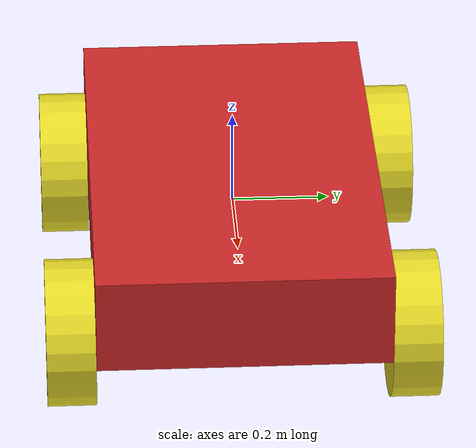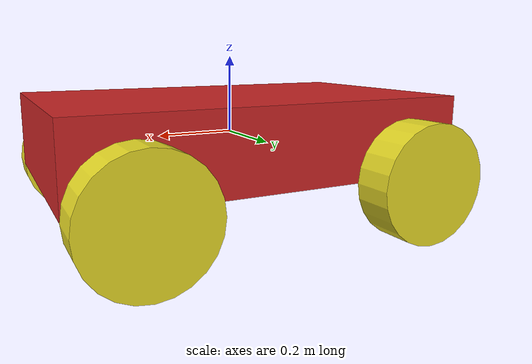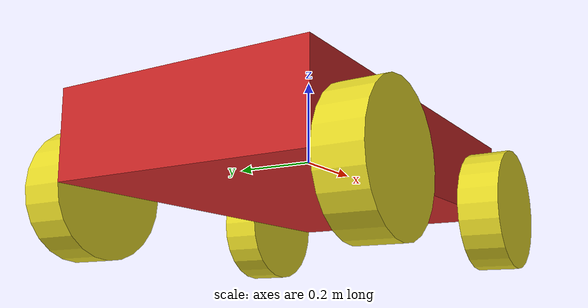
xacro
<?xml version="1.0"?>

<robot name="differential_drive_robot"
       xmlns:xacro="http://www.ros.org/wiki/xacro">

    <!-- PARAMETERS -->

    <xacro:property name="body_link_x_dim" value="1.0"/>
    <xacro:property name="body_link_y_dim" value="0.6"/>
    <xacro:property name="body_link_z_dim" value="0.2"/>

    <xacro:property name="wheel_link_radius" value="0.15"/>
    <xacro:property name="wheel_link_length" value="0.1"/>
    <xacro:property name="wheel_link_z_location" value="-0.1"/>

    <xacro:property name="body_density" value="2710.0"/>
    <xacro:property name="wheel_density" value="2710.0"/>

    <xacro:property name="pi_const" value="3.14159265"/>

    <!-- MASS -->

    <xacro:property
        name="body_mass"
        value="${body_density * body_link_x_dim * body_link_y_dim * body_link_z_dim}"/>

    <xacro:property
        name="wheel_mass"
        value="${wheel_density * pi_const * wheel_link_radius * wheel_link_radius * wheel_link_length}"/>

    <!-- WHEEL INERTIA -->

    <xacro:property
        name="Iz_wheel"
        value="${0.5 * wheel_mass * wheel_link_radius * wheel_link_radius}"/>

    <xacro:property
        name="I_wheel"
        value="${(1.0/12.0) * wheel_mass * (3.0 * wheel_link_radius * wheel_link_radius + wheel_link_length * wheel_link_length)}"/>

    <!-- GAZEBO INCLUDE -->

    <xacro:include filename="$(find mobile_robot)/model/robot.gazebo"/>

    <!-- WHEEL INERTIA MACRO -->

    <xacro:macro name="inertial_wheel">

        <inertial>

            <origin xyz="0 0 0" rpy="0 0 0"/>

            <mass value="${wheel_mass}"/>

            <inertia
                ixx="${I_wheel}"
                ixy="0.0"
                ixz="0.0"
                iyy="${I_wheel}"
                iyz="0.0"
                izz="${Iz_wheel}"/>

        </inertial>

    </xacro:macro>

    <!-- DUMMY LINK -->

    <link name="dummy"/>

    <joint name="dummy_joint" type="fixed">

        <parent link="dummy"/>
        <child link="body_link"/>

    </joint>

    <!-- BODY LINK -->

    <link name="body_link">

        <visual>
            <geometry>
                <box size="${body_link_x_dim}
                           ${body_link_y_dim}
                           ${body_link_z_dim}"/>
            </geometry>
        </visual>

        <collision>

            <origin xyz="0 0 0" rpy="0 0 0"/>

            <geometry>
                <box size="${body_link_x_dim}
                           ${body_link_y_dim}
                           ${body_link_z_dim}"/>
            </geometry>

        </collision>

        <inertial>

            <origin xyz="0 0 0" rpy="0 0 0"/>

            <mass value="${body_mass}"/>

            <inertia
                ixx="${(1.0/12.0)*body_mass*(body_link_y_dim*body_link_y_dim + body_link_z_dim*body_link_z_dim)}"
                ixy="0.0"
                ixz="0.0"
                iyy="${(1.0/12.0)*body_mass*(body_link_x_dim*body_link_x_dim + body_link_z_dim*body_link_z_dim)}"
                iyz="0.0"
                izz="${(1.0/12.0)*body_mass*(body_link_x_dim*body_link_x_dim + body_link_y_dim*body_link_y_dim)}"/>

        </inertial>

    </link>

    <!-- WHEEL MACRO -->

    <xacro:macro name="wheel" params="name x y">

        <joint name="${name}_joint" type="continuous">

            <parent link="body_link"/>
            <child link="${name}_link"/>

            <origin xyz="${x} ${y} ${wheel_link_z_location}"
                    rpy="0 0 0"/>

            <axis xyz="0 1 0"/>

            <limit effort="1000" velocity="1000"/>

            <dynamics damping="1.0"
                      friction="1.0"/>

        </joint>

        <link name="${name}_link">

            <visual>

                <origin xyz="0 0 0"
                        rpy="1.570795 0 0"/>

                <geometry>
                    <cylinder length="${wheel_link_length}"
                              radius="${wheel_link_radius}"/>
                </geometry>

            </visual>

            <collision>

                <origin xyz="0 0 0"
                        rpy="1.570795 0 0"/>

                <geometry>
                    <cylinder length="${wheel_link_length}"
                              radius="${wheel_link_radius}"/>
                </geometry>

            </collision>

            <xacro:inertial_wheel/>

        </link>

    </xacro:macro>

    <!-- FOUR WHEELS -->

    <xacro:wheel
        name="wheel1"
        x="0.35"
        y="-0.35"/>

    <xacro:wheel
        name="wheel2"
        x="0.35"
        y="0.35"/>

    <xacro:wheel
        name="wheel3"
        x="-0.35"
        y="-0.35"/>

    <xacro:wheel
        name="wheel4"
        x="-0.35"
        y="0.35"/>

</robot>
